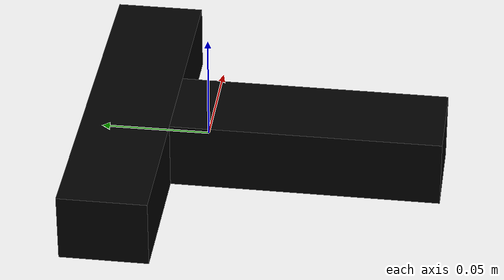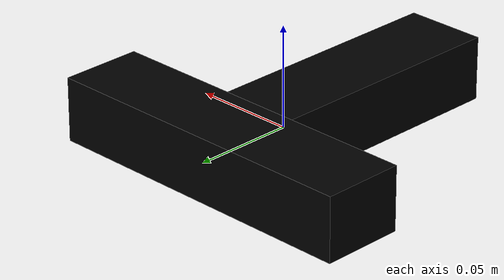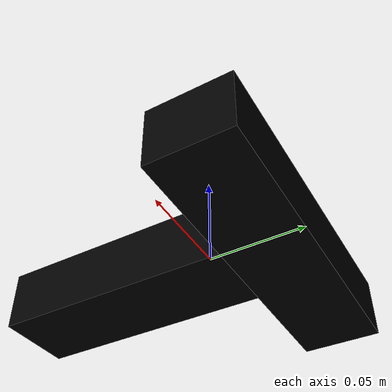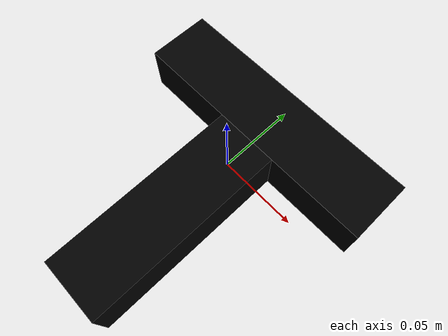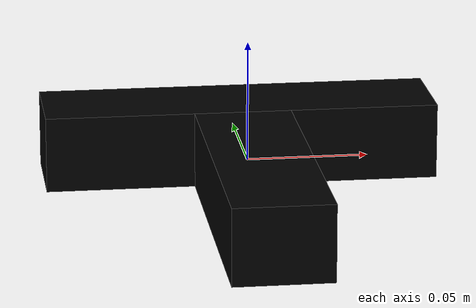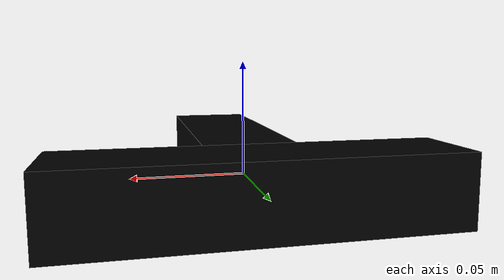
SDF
<?xml version="1.0"?>
        <sdf version="1.7">
            <model name="arbitrary">
                <link name="arbitrary">
                    <inertial>
                        <inertia>
                            <ixx>1e-05</ixx>
                            <ixy>0.0</ixy>
                            <ixz>0.0</ixz>
                            <iyy>1e-05</iyy>
                            <iyz>0.0</iyz>
                            <izz>1e-05</izz>
                        </inertia>
                        <mass>0.1</mass>
                        <pose>0.0 0.0 0.0 0 0 0</pose>
                    </inertial>

                <visual name="visual_0">
                    <pose>
                        0.0 0.03548364298787857 0.0 -0.0 0.0 0.0
                    </pose>
                    <geometry>

            <box>
                <size>0.1651 0.04064 0.03175</size>
            </box>

                    </geometry>

                    <material>
                        <diffuse> 0.0 0.0 0.0 1.0 </diffuse>
                    </material>

                </visual>

                <visual name="visual_1">
                    <pose>
                        0.0 -0.047066357012121425 0.0 -0.0 0.0 0.0
                    </pose>
                    <geometry>

            <box>
                <size>0.04064 0.12447 0.03175</size>
            </box>

                    </geometry>

                    <material>
                        <diffuse> 0.0 0.0 0.0 1.0 </diffuse>
                    </material>

                </visual>

            <collision name="collision_0">
                <pose>
                    0.0 0.03548364298787857 0.0 -0.0 0.0 0.0
                </pose>
                <geometry>

            <box>
                <size>0.1651 0.04064 0.03175</size>
            </box>

                </geometry>

            <drake:proximity_properties>

                        <drake:compliant_hydroelastic/>
                        <drake:hydroelastic_modulus>
                            1000000.0
                        </drake:hydroelastic_modulus>

                    <drake:mesh_resolution_hint>
                        0.01
                    </drake:mesh_resolution_hint>

                    <drake:mu_dynamic>
                        0.5
                    </drake:mu_dynamic>

                    <drake:mu_static>
                        0.5
                    </drake:mu_static>

            </drake:proximity_properties>

                </collision>

            <collision name="collision_1">
                <pose>
                    0.0 -0.047066357012121425 0.0 -0.0 0.0 0.0
                </pose>
                <geometry>

            <box>
                <size>0.04064 0.12447 0.03175</size>
            </box>

                </geometry>

            <drake:proximity_properties>

                        <drake:compliant_hydroelastic/>
                        <drake:hydroelastic_modulus>
                            1000000.0
                        </drake:hydroelastic_modulus>

                    <drake:mesh_resolution_hint>
                        0.01
                    </drake:mesh_resolution_hint>

                    <drake:mu_dynamic>
                        0.5
                    </drake:mu_dynamic>

                    <drake:mu_static>
                        0.5
                    </drake:mu_static>

            </drake:proximity_properties>

                </collision>

                    </link>
                </model>
            </sdf>
